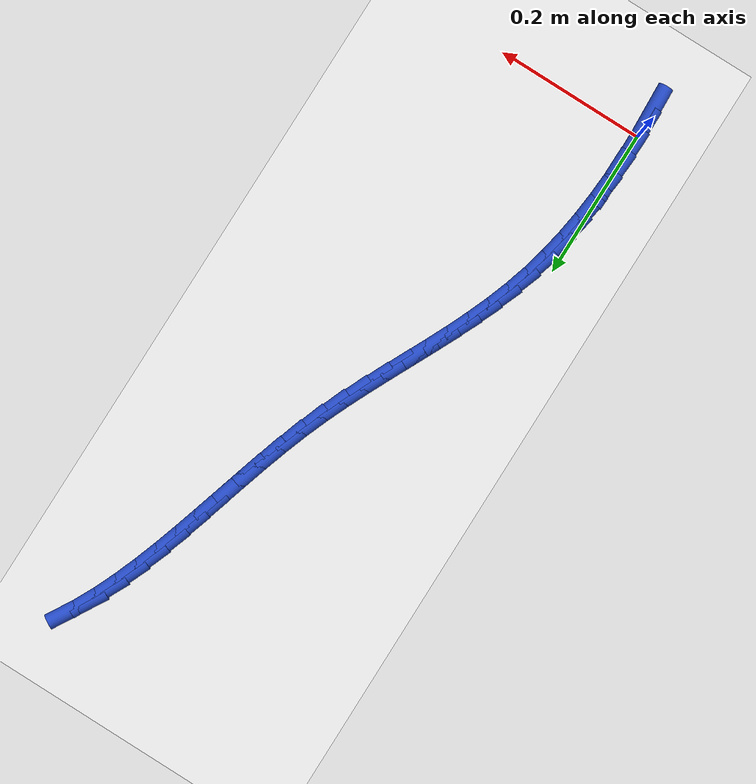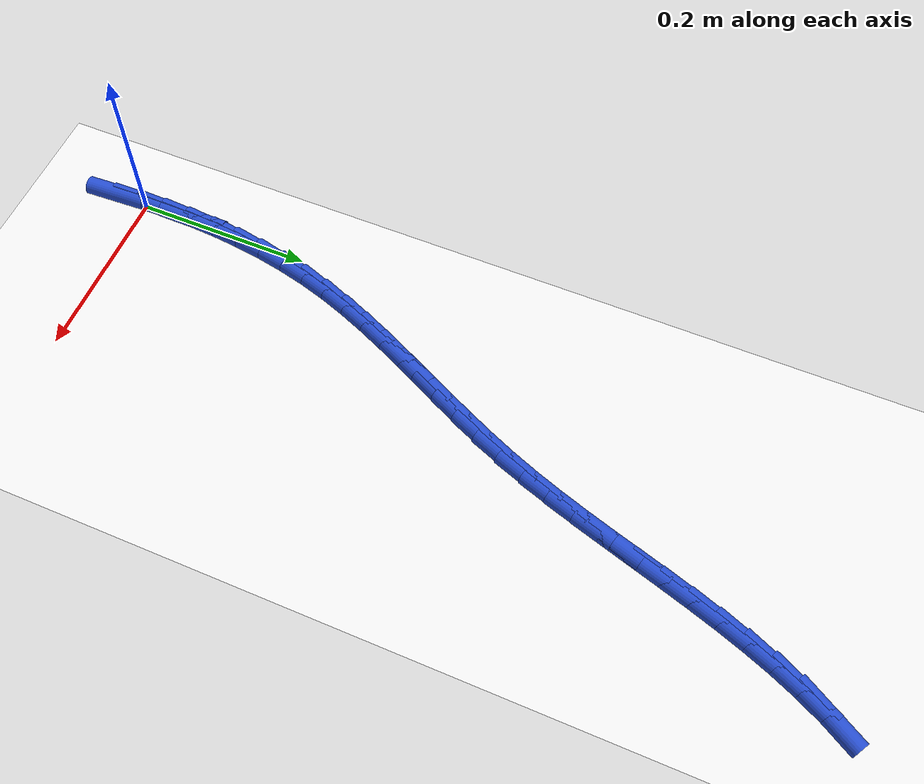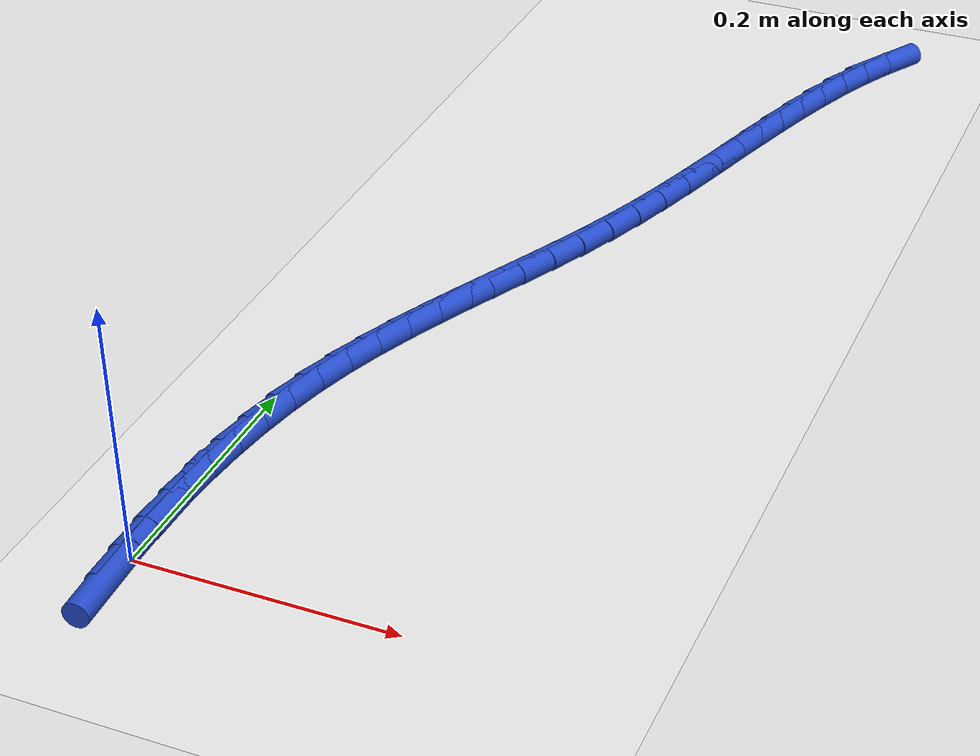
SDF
<sdf version="1.6">
 <world name="default">
  <model name="ground_plane">
   <static>1</static>
   <link name="link">
    <collision name="collision">
     <geometry><plane><normal>0 0 1</normal><size>100 100</size></plane></geometry>
     <surface><friction><ode><mu>100</mu><mu2>50</mu2></ode></friction></surface>
    </collision>
    <visual name="visual">
     <cast_shadows>0</cast_shadows>
     <geometry><plane><normal>0 0 1</normal><size>100 100</size></plane></geometry>
     <material>
      <script><uri>file://media/materials/scripts/gazebo.material</uri><name>Gazebo/WhiteGlow</name></script>
     </material>
    </visual>
   </link>
  </model>
  <model name="line">
   <link name="link_0">
    <pose>1.3010426069826053e-18 2.0816681711721685e-17 0.01 0 1.57 -1.5575038894447397</pose>
    <collision name="collision">
     <geometry><cylinder><radius>0.01</radius><length>0.08</length></cylinder></geometry>
    </collision>
    <visual name="visual">
     <material>
      <script><name>Gazebo/Blue</name><uri>file://media/materials/scripts/gazebo.material</uri></script>
     </material>
     <geometry><cylinder><radius>0.01</radius><length>0.08</length></cylinder></geometry>
    </visual>
   </link>
   <link name="link_1">
    <pose>-0.00041409959676044783 0.03115118744836307 0.01 0 1.57 1.5482590688084805</pose>
    <collision name="collision">
     <geometry><cylinder><radius>0.01</radius><length>0.08</length></cylinder></geometry>
    </collision>
    <visual name="visual">
     <material>
      <script><name>Gazebo/Blue</name><uri>file://media/materials/scripts/gazebo.material</uri></script>
     </material>
     <geometry><cylinder><radius>0.01</radius><length>0.08</length></cylinder></geometry>
    </visual>
   </link>
   <link name="link_2">
    <pose>0.00029278531470994506 0.06251104611577475 0.01 0 1.57 1.5103837322290365</pose>
    <collision name="collision">
     <geometry><cylinder><radius>0.01</radius><length>0.08</length></cylinder></geometry>
    </collision>
    <visual name="visual">
     <material>
      <script><name>Gazebo/Blue</name><uri>file://media/materials/scripts/gazebo.material</uri></script>
     </material>
     <geometry><cylinder><radius>0.01</radius><length>0.08</length></cylinder></geometry>
    </visual>
   </link>
   <link name="link_3">
    <pose>0.002193637149858419 0.09393725425375617 0.01 0 1.57 1.470092604356373</pose>
    <collision name="collision">
     <geometry><cylinder><radius>0.01</radius><length>0.08</length></cylinder></geometry>
    </collision>
    <visual name="visual">
     <material>
      <script><name>Gazebo/Blue</name><uri>file://media/materials/scripts/gazebo.material</uri></script>
     </material>
     <geometry><cylinder><radius>0.01</radius><length>0.08</length></cylinder></geometry>
    </visual>
   </link>
   <link name="link_4">
    <pose>0.00536143832413221 0.12528749011382834 0.01 0 1.57 1.427001211475625</pose>
    <collision name="collision">
     <geometry><cylinder><radius>0.01</radius><length>0.08</length></cylinder></geometry>
    </collision>
    <visual name="visual">
     <material>
      <script><name>Gazebo/Blue</name><uri>file://media/materials/scripts/gazebo.material</uri></script>
     </material>
     <geometry><cylinder><radius>0.01</radius><length>0.08</length></cylinder></geometry>
    </visual>
   </link>
   <link name="link_5">
    <pose>0.009869171252978554 0.1564194319475123 0.01 0 1.57 1.3807113794045376</pose>
    <collision name="collision">
     <geometry><cylinder><radius>0.01</radius><length>0.08</length></cylinder></geometry>
    </collision>
    <visual name="visual">
     <material>
      <script><name>Gazebo/Blue</name><uri>file://media/materials/scripts/gazebo.material</uri></script>
     </material>
     <geometry><cylinder><radius>0.01</radius><length>0.08</length></cylinder></geometry>
    </visual>
   </link>
   <link name="link_6">
    <pose>0.015789818351844693 0.18719075800632914 0.01 0 1.57 1.3308161689650584</pose>
    <collision name="collision">
     <geometry><cylinder><radius>0.01</radius><length>0.08</length></cylinder></geometry>
    </collision>
    <visual name="visual">
     <material>
      <script><name>Gazebo/Blue</name><uri>file://media/materials/scripts/gazebo.material</uri></script>
     </material>
     <geometry><cylinder><radius>0.01</radius><length>0.08</length></cylinder></geometry>
    </visual>
   </link>
   <link name="link_7">
    <pose>0.023196362036177864 0.2174591465417999 0.01 0 1.57 1.2772878808390065</pose>
    <collision name="collision">
     <geometry><cylinder><radius>0.01</radius><length>0.08</length></cylinder></geometry>
    </collision>
    <visual name="visual">
     <material>
      <script><name>Gazebo/Blue</name><uri>file://media/materials/scripts/gazebo.material</uri></script>
     </material>
     <geometry><cylinder><radius>0.01</radius><length>0.08</length></cylinder></geometry>
    </visual>
   </link>
   <link name="link_8">
    <pose>0.032152131485604675 0.2470906916014249 0.01 0 1.57 1.2266485279615884</pose>
    <collision name="collision">
     <geometry><cylinder><radius>0.01</radius><length>0.08</length></cylinder></geometry>
    </collision>
    <visual name="visual">
     <material>
      <script><name>Gazebo/Blue</name><uri>file://media/materials/scripts/gazebo.material</uri></script>
     </material>
     <geometry><cylinder><radius>0.01</radius><length>0.08</length></cylinder></geometry>
    </visual>
   </link>
   <link name="link_9">
    <pose>0.04254954858058153 0.27610048607494714 0.01 0 1.57 1.185087152476926</pose>
    <collision name="collision">
     <geometry><cylinder><radius>0.01</radius><length>0.08</length></cylinder></geometry>
    </collision>
    <visual name="visual">
     <material>
      <script><name>Gazebo/Blue</name><uri>file://media/materials/scripts/gazebo.material</uri></script>
     </material>
     <geometry><cylinder><radius>0.01</radius><length>0.08</length></cylinder></geometry>
    </visual>
   </link>
   <link name="link_10">
    <pose>0.05413446693675658 0.30463140265947897 0.01 0 1.57 1.153146279682594</pose>
    <collision name="collision">
     <geometry><cylinder><radius>0.01</radius><length>0.08</length></cylinder></geometry>
    </collision>
    <visual name="visual">
     <material>
      <script><name>Gazebo/Blue</name><uri>file://media/materials/scripts/gazebo.material</uri></script>
     </material>
     <geometry><cylinder><radius>0.01</radius><length>0.08</length></cylinder></geometry>
    </visual>
   </link>
   <link name="link_11">
    <pose>0.06664799078491741 0.3328304546175097 0.01 0 1.57 1.1309513957985897</pose>
    <collision name="collision">
     <geometry><cylinder><radius>0.01</radius><length>0.08</length></cylinder></geometry>
    </collision>
    <visual name="visual">
     <material>
      <script><name>Gazebo/Blue</name><uri>file://media/materials/scripts/gazebo.material</uri></script>
     </material>
     <geometry><cylinder><radius>0.01</radius><length>0.08</length></cylinder></geometry>
    </visual>
   </link>
   <link name="link_12">
    <pose>0.0798312243558515 0.3608446552115284 0.01 0 1.57 1.1184825822149278</pose>
    <collision name="collision">
     <geometry><cylinder><radius>0.01</radius><length>0.08</length></cylinder></geometry>
    </collision>
    <visual name="visual">
     <material>
      <script><name>Gazebo/Blue</name><uri>file://media/materials/scripts/gazebo.material</uri></script>
     </material>
     <geometry><cylinder><radius>0.01</radius><length>0.08</length></cylinder></geometry>
    </visual>
   </link>
   <link name="link_13">
    <pose>0.09342527188034638 0.38882101770402433 0.01 0 1.57 1.1156386648064764</pose>
    <collision name="collision">
     <geometry><cylinder><radius>0.01</radius><length>0.08</length></cylinder></geometry>
    </collision>
    <visual name="visual">
     <material>
      <script><name>Gazebo/Blue</name><uri>file://media/materials/scripts/gazebo.material</uri></script>
     </material>
     <geometry><cylinder><radius>0.01</radius><length>0.08</length></cylinder></geometry>
    </visual>
   </link>
   <link name="link_14">
    <pose>0.10717123758918967 0.41690655535748705 0.01 0 1.57 1.122274312137525</pose>
    <collision name="collision">
     <geometry><cylinder><radius>0.01</radius><length>0.08</length></cylinder></geometry>
    </collision>
    <visual name="visual">
     <material>
      <script><name>Gazebo/Blue</name><uri>file://media/materials/scripts/gazebo.material</uri></script>
     </material>
     <geometry><cylinder><radius>0.01</radius><length>0.08</length></cylinder></geometry>
    </visual>
   </link>
   <link name="link_15">
    <pose>0.12081022571316884 0.4452482814344053 0.01 0 1.57 1.1382100350771376</pose>
    <collision name="collision">
     <geometry><cylinder><radius>0.01</radius><length>0.08</length></cylinder></geometry>
    </collision>
    <visual name="visual">
     <material>
      <script><name>Gazebo/Blue</name><uri>file://media/materials/scripts/gazebo.material</uri></script>
     </material>
     <geometry><cylinder><radius>0.01</radius><length>0.08</length></cylinder></geometry>
    </visual>
   </link>
   <link name="link_16">
    <pose>0.13408334048307144 0.4739932091972685 0.01 0 1.57 1.163217461635742</pose>
    <collision name="collision">
     <geometry><cylinder><radius>0.01</radius><length>0.08</length></cylinder></geometry>
    </collision>
    <visual name="visual">
     <material>
      <script><name>Gazebo/Blue</name><uri>file://media/materials/scripts/gazebo.material</uri></script>
     </material>
     <geometry><cylinder><radius>0.01</radius><length>0.08</length></cylinder></geometry>
    </visual>
   </link>
   <link name="link_17">
    <pose>0.146731686129685 0.5032883519085659 0.01 0 1.57 1.1965875367184091</pose>
    <collision name="collision">
     <geometry><cylinder><radius>0.01</radius><length>0.08</length></cylinder></geometry>
    </collision>
    <visual name="visual">
     <material>
      <script><name>Gazebo/Blue</name><uri>file://media/materials/scripts/gazebo.material</uri></script>
     </material>
     <geometry><cylinder><radius>0.01</radius><length>0.08</length></cylinder></geometry>
    </visual>
   </link>
   <link name="link_18">
    <pose>0.1585071708979973 0.5332733104056475 0.01 0 1.57 1.2295424686283842</pose>
    <collision name="collision">
     <geometry><cylinder><radius>0.01</radius><length>0.08</length></cylinder></geometry>
    </collision>
    <visual name="visual">
     <material>
      <script><name>Gazebo/Blue</name><uri>file://media/materials/scripts/gazebo.material</uri></script>
     </material>
     <geometry><cylinder><radius>0.01</radius><length>0.08</length></cylinder></geometry>
    </visual>
   </link>
   <link name="link_19">
    <pose>0.169394193767727 0.5639281781302972 0.01 0 1.57 1.2541638961549795</pose>
    <collision name="collision">
     <geometry><cylinder><radius>0.01</radius><length>0.08</length></cylinder></geometry>
    </collision>
    <visual name="visual">
     <material>
      <script><name>Gazebo/Blue</name><uri>file://media/materials/scripts/gazebo.material</uri></script>
     </material>
     <geometry><cylinder><radius>0.01</radius><length>0.08</length></cylinder></geometry>
    </visual>
   </link>
   <link name="link_20">
    <pose>0.1796010875475896 0.5950794118562224 0.01 0 1.57 1.2705048027986683</pose>
    <collision name="collision">
     <geometry><cylinder><radius>0.01</radius><length>0.08</length></cylinder></geometry>
    </collision>
    <visual name="visual">
     <material>
      <script><name>Gazebo/Blue</name><uri>file://media/materials/scripts/gazebo.material</uri></script>
     </material>
     <geometry><cylinder><radius>0.01</radius><length>0.08</length></cylinder></geometry>
    </visual>
   </link>
   <link name="link_21">
    <pose>0.18934527692489478 0.6265472305951106 0.01 0 1.57 1.2788309504073365</pose>
    <collision name="collision">
     <geometry><cylinder><radius>0.01</radius><length>0.08</length></cylinder></geometry>
    </collision>
    <visual name="visual">
     <material>
      <script><name>Gazebo/Blue</name><uri>file://media/materials/scripts/gazebo.material</uri></script>
     </material>
     <geometry><cylinder><radius>0.01</radius><length>0.08</length></cylinder></geometry>
    </visual>
   </link>
   <link name="link_22">
    <pose>0.19884418658695197 0.6581518533586487 0.01 0 1.57 1.2792650941294827</pose>
    <collision name="collision">
     <geometry><cylinder><radius>0.01</radius><length>0.08</length></cylinder></geometry>
    </collision>
    <visual name="visual">
     <material>
      <script><name>Gazebo/Blue</name><uri>file://media/materials/scripts/gazebo.material</uri></script>
     </material>
     <geometry><cylinder><radius>0.01</radius><length>0.08</length></cylinder></geometry>
    </visual>
   </link>
   <link name="link_23">
    <pose>0.20831524122107073 0.6897134991585232 0.01 0 1.57 1.2717760065190185</pose>
    <collision name="collision">
     <geometry><cylinder><radius>0.01</radius><length>0.08</length></cylinder></geometry>
    </collision>
    <visual name="visual">
     <material>
      <script><name>Gazebo/Blue</name><uri>file://media/materials/scripts/gazebo.material</uri></script>
     </material>
     <geometry><cylinder><radius>0.01</radius><length>0.08</length></cylinder></geometry>
    </visual>
   </link>
   <link name="link_24">
    <pose>0.21797586551456063 0.721052387006422 0.01 0 1.57 1.2561754801505745</pose>
    <collision name="collision">
     <geometry><cylinder><radius>0.01</radius><length>0.08</length></cylinder></geometry>
    </collision>
    <visual name="visual">
     <material>
      <script><name>Gazebo/Blue</name><uri>file://media/materials/scripts/gazebo.material</uri></script>
     </material>
     <geometry><cylinder><radius>0.01</radius><length>0.08</length></cylinder></geometry>
    </visual>
   </link>
   <link name="link_25">
    <pose>0.22804348415473125 0.7519887359140317 0.01 0 1.57 1.2321234150519773</pose>
    <collision name="collision">
     <geometry><cylinder><radius>0.01</radius><length>0.08</length></cylinder></geometry>
    </collision>
    <visual name="visual">
     <material>
      <script><name>Gazebo/Blue</name><uri>file://media/materials/scripts/gazebo.material</uri></script>
     </material>
     <geometry><cylinder><radius>0.01</radius><length>0.08</length></cylinder></geometry>
    </visual>
   </link>
   <link name="link_26">
    <pose>0.2387355218288919 0.7823427648930387 0.01 0 1.57 1.1991447269757256</pose>
    <collision name="collision">
     <geometry><cylinder><radius>0.01</radius><length>0.08</length></cylinder></geometry>
    </collision>
    <visual name="visual">
     <material>
      <script><name>Gazebo/Blue</name><uri>file://media/materials/scripts/gazebo.material</uri></script>
     </material>
     <geometry><cylinder><radius>0.01</radius><length>0.08</length></cylinder></geometry>
    </visual>
   </link>
   <link name="link_27">
    <pose>0.25026940322435237 0.8119346929551308 0.01 0 1.57 1.1566658814537734</pose>
    <collision name="collision">
     <geometry><cylinder><radius>0.01</radius><length>0.08</length></cylinder></geometry>
    </collision>
    <visual name="visual">
     <material>
      <script><name>Gazebo/Blue</name><uri>file://media/materials/scripts/gazebo.material</uri></script>
     </material>
     <geometry><cylinder><radius>0.01</radius><length>0.08</length></cylinder></geometry>
    </visual>
   </link>
   <link name="link_28">
    <pose>0.2628625530284221 0.8405847391119945 0.01 0 1.57 1.1040831111078588</pose>
    <collision name="collision">
     <geometry><cylinder><radius>0.01</radius><length>0.08</length></cylinder></geometry>
    </collision>
    <visual name="visual">
     <material>
      <script><name>Gazebo/Blue</name><uri>file://media/materials/scripts/gazebo.material</uri></script>
     </material>
     <geometry><cylinder><radius>0.01</radius><length>0.08</length></cylinder></geometry>
    </visual>
   </link>
   <link name="link_29">
    <pose>0.27673239592841054 0.8681131223753169 0.01 0 1.57 1.0408772059907272</pose>
    <collision name="collision">
     <geometry><cylinder><radius>0.01</radius><length>0.08</length></cylinder></geometry>
    </collision>
    <visual name="visual">
     <material>
      <script><name>Gazebo/Blue</name><uri>file://media/materials/scripts/gazebo.material</uri></script>
     </material>
     <geometry><cylinder><radius>0.01</radius><length>0.08</length></cylinder></geometry>
    </visual>
   </link>
   <link name="link_269">
    <pose>0.0014521056026936346 -0.03084736355444098 0.01 0 1.57 -1.5237571551869633</pose>
    <collision name="collision">
     <geometry><cylinder><radius>0.01</radius><length>0.08</length></cylinder></geometry>
    </collision>
    <visual name="visual">
     <material>
      <script><name>Gazebo/Blue</name><uri>file://media/materials/scripts/gazebo.material</uri></script>
     </material>
     <geometry><cylinder><radius>0.01</radius><length>0.08</length></cylinder></geometry>
    </visual>
   </link>
   <link name="link_270">
    <pose>-3.0357660829594124e-18 1.3183898417423734e-16 0.01 0 1.57 -1.5578443332277285</pose>
    <collision name="collision">
     <geometry><cylinder><radius>0.01</radius><length>0.08</length></cylinder></geometry>
    </collision>
    <visual name="visual">
     <material>
      <script><name>Gazebo/Blue</name><uri>file://media/materials/scripts/gazebo.material</uri></script>
     </material>
     <geometry><cylinder><radius>0.01</radius><length>0.08</length></cylinder></geometry>
    </visual>
   </link>
   <link name="link_271">
    <pose>-0.0004041035099100576 0.031198356521969763 0.01 0 1.57 1.546286988689135</pose>
    <collision name="collision">
     <geometry><cylinder><radius>0.01</radius><length>0.08</length></cylinder></geometry>
    </collision>
    <visual name="visual">
     <material>
      <script><name>Gazebo/Blue</name><uri>file://media/materials/scripts/gazebo.material</uri></script>
     </material>
     <geometry><cylinder><radius>0.01</radius><length>0.08</length></cylinder></geometry>
    </visual>
   </link>
   <link name="link_272">
    <pose>0.0003727540095131085 0.06288839870462419 0.01 0 1.57 1.5648691661090144</pose>
    <collision name="collision">
     <geometry><cylinder><radius>0.01</radius><length>0.08</length></cylinder></geometry>
    </collision>
    <visual name="visual">
     <material>
      <script><name>Gazebo/Blue</name><uri>file://media/materials/scripts/gazebo.material</uri></script>
     </material>
     <geometry><cylinder><radius>0.01</radius><length>0.08</length></cylinder></geometry>
    </visual>
   </link>
  </model>
 </world>
</sdf>
